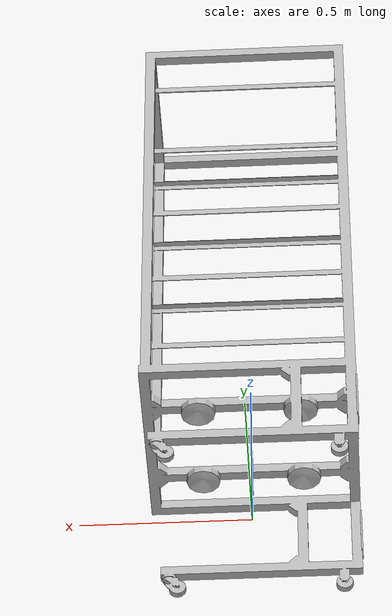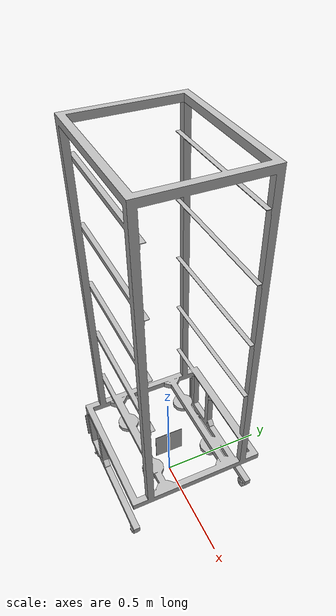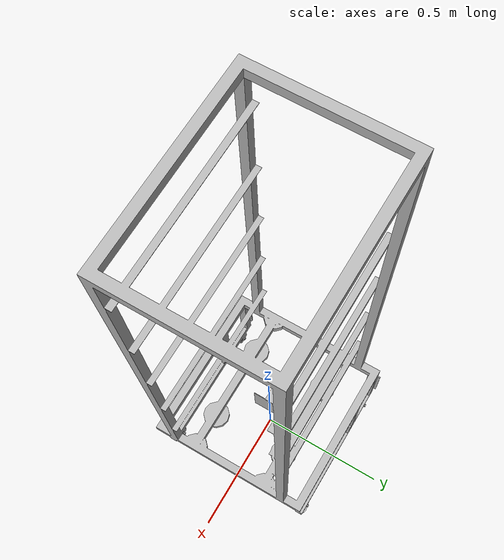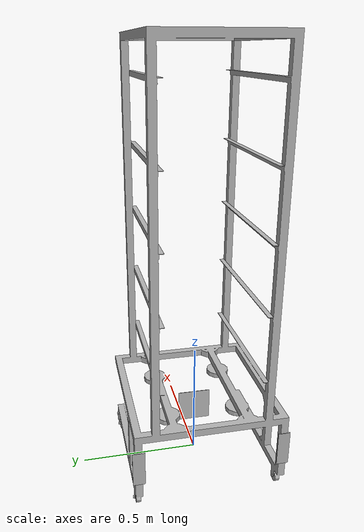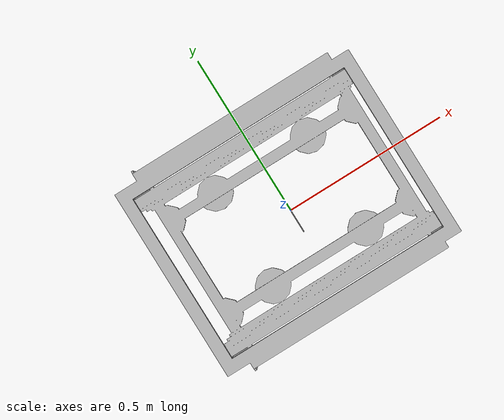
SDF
<?xml version='1.0'?>
<sdf version='1.6'>
  <model name='rb1_rblog_cart'>
    <link name='link_0'>
      <pose frame=''>0 0 0.0 0 -0 0.0</pose>
      <inertial>
         <mass>50</mass>
        <inertia>
          <ixx>0.166667</ixx>
          <ixy>0</ixy>
          <ixz>0</ixz>
          <iyy>0.166667</iyy>
          <iyz>0</iyz>
          <izz>0.166667</izz>
        </inertia>
        <pose frame=''>0 0 0 0 -0 0</pose>
      </inertial>
      <gravity>1</gravity>
      <self_collide>0</self_collide>
      <kinematic>0</kinematic>

      <visual name='visual0'>
        <pose frame=''>0 0 -0.025 0 0 0</pose>
        <geometry>
          <mesh>
		<uri>model://rb1_rblog_cart/meshes/rb1_rblog_cart.dae</uri>
            <scale>1 1 1</scale>
          </mesh>
        </geometry>

        <cast_shadows>1</cast_shadows>
        <transparency>0</transparency>
      </visual>

      <collision name='collision0'>
        <laser_retro>0</laser_retro>
        <max_contacts>10</max_contacts>
        <pose frame=''>0.0 -0.0 1.034 0 -0 0</pose>
        <geometry>
          <box>
            <size>0.630 0.630 1.475</size>
          </box>
        </geometry>
      </collision>

      <collision name='collision1'>
        <laser_retro>0</laser_retro>
        <max_contacts>10</max_contacts>
        <pose frame='link_0'>-0.14 0.3 0.18 0 -0 0</pose>
        <geometry>
          <box>
            <size>0.03 0.03 0.36</size>
          </box>
        </geometry>
      </collision>

      <collision name='collision2'>
        <laser_retro>0</laser_retro>
        <max_contacts>10</max_contacts>
        <pose frame='link_0'>-0.315 0.3 0.18 0 -0 0</pose>
        <geometry>
          <box>
            <size>0.03 0.03 0.36</size>
          </box>
        </geometry>
      </collision>

      <collision name='collision3'>
        <laser_retro>0</laser_retro>
        <max_contacts>10</max_contacts>
	<pose frame='link_0'>-0.14 -0.3 0.18 0 -0 0</pose>
        <geometry>
          <box>
            <size>0.03 0.03 0.36</size>
          </box>
        </geometry>
      </collision>

     <collision name='collision4'>
        <laser_retro>0</laser_retro>
        <max_contacts>10</max_contacts>
        <pose frame='link_0'>-0.315 -0.3 0.18 0 -0 0</pose>
        <geometry>
          <box>
            <size>0.03 0.03 0.36</size>
          </box>
        </geometry>
      </collision>

      <collision name='collision5'>
        <laser_retro>0</laser_retro>
        <max_contacts>10</max_contacts>
        <pose frame='link_0'>-0.02 0.3 0.025 0 -0 0</pose>
        <geometry>
          <box>
            <size>0.61 0.03 0.1</size>
          </box>
        </geometry>
      </collision>

      <collision name='collision6'>
        <laser_retro>0</laser_retro>
        <max_contacts>10</max_contacts>
        <pose frame='link_0'>-0.02 -0.3 0.025 0 -0 0</pose>
        <geometry>
          <box>
            <size>0.61 0.03 0.1</size>
          </box>
        </geometry>
      </collision>
    </link>

    <link name='link_reflector_1'>
      <pose frame='link_0'>-0.315 0.3 0.185 0 -0 0</pose>

      <gravity>0</gravity>

      <visual name='visual0'>
        <pose frame=''>0 0 -0.0 0 -0 0</pose>
        <geometry>
          <box><size>0.005 0.05 0.15</size></box>
        </geometry>
	<material>
          <lighting>1</lighting>
          <ambient>0.3 0.3 0.3 1</ambient>
          <diffuse>0.7 0.7 0.7 1</diffuse>
          <specular>0.01 0.01 0.01 1</specular>
          <emissive>0 0 0 1</emissive>
          <shader type='vertex'>
            <normal_map>__default__</normal_map>
          </shader>
        </material>
      </visual>
      <collision name='collision0'>
        <pose frame=''>0 0 -0.0 0 -0 0</pose>
        <geometry>
          <box><size>0.005 0.05 0.15</size></box>
        </geometry>
	<laser_retro>8000</laser_retro>
      </collision>
    </link>

    <link name='link_reflector_2'>
      <pose frame='link_0'>-0.315 -0.3 0.185 0 -0 0</pose>
      <gravity>0</gravity>

      <visual name='visual0'>
        <pose frame=''>0 0 -0.0 0 -0 0</pose>
        <geometry>
          <box><size>0.005 0.05 0.15</size></box>
        </geometry>
	<material>
          <lighting>1</lighting>
          <ambient>0.3 0.3 0.3 1</ambient>
          <diffuse>0.7 0.7 0.7 1</diffuse>
          <specular>0.01 0.01 0.01 1</specular>
          <emissive>0 0 0 1</emissive>
          <shader type='vertex'>
            <normal_map>__default__</normal_map>
          </shader>
        </material>
      </visual>
      <collision name='collision0'>
        <pose frame=''>0 0 -0.0 0 -0 0</pose>
        <geometry>
          <box><size>0.005 0.05 0.15</size></box>
        </geometry>
	<laser_retro>8000</laser_retro>
      </collision>
    </link>

    <link name='link_qr_code'>
      <pose frame=''>-0.0 0 0.225 0 0 0</pose>
      <gravity>0</gravity>
      <visual name='visual'>
        <pose frame=''>0 0 0 0 -0 0</pose>
        <geometry>
          <box>
            <size>0.002 0.14 0.14</size>
          </box>
        </geometry>
        <material>
          <script>
		<uri>model://marker4_border_12cm/material/scripts</uri>
		<uri>model://marker4_border_12cm/material/textures</uri>
		<name>ARtrack/marker4_border_12cm</name>
          </script>
        </material>

      </visual>
    </link>

     <joint name='joint_0_to_reflector_1' type='fixed'>
      <parent>link_0</parent>
      <child>link_reflector_1</child>
      <pose frame=''>0 0 0 0 -0 0</pose>
      <physics>
        <ode>
          <limit>
            <cfm>0</cfm>
            <erp>0.2</erp>
          </limit>
          <suspension>
            <cfm>0</cfm>
            <erp>0.2</erp>
          </suspension>
        </ode>
      </physics>
    </joint>
    <joint name='joint_0_to_reflector_2' type='fixed'>
      <parent>link_0</parent>
      <child>link_reflector_2</child>
      <pose frame=''>0 0 0 0 -0 0</pose>
      <physics>
        <ode>
          <limit>
            <cfm>0</cfm>
            <erp>0.2</erp>
          </limit>
          <suspension>
            <cfm>0</cfm>
            <erp>0.2</erp>
          </suspension>
        </ode>
      </physics>
    </joint>
    <joint name='joint_0_to_marker' type='fixed'>
      <parent>link_0</parent>
      <child>link_qr_code</child>
      <pose frame=''>0 0 0 0 -0 0</pose>
      <physics>
        <ode>
          <limit>
            <cfm>0</cfm>
            <erp>0.2</erp>
          </limit>
          <suspension>
            <cfm>0</cfm>
            <erp>0.2</erp>
          </suspension>
        </ode>
      </physics>
    </joint>

    <static>0</static>
    <allow_auto_disable>1</allow_auto_disable>
  </model>
</sdf>
